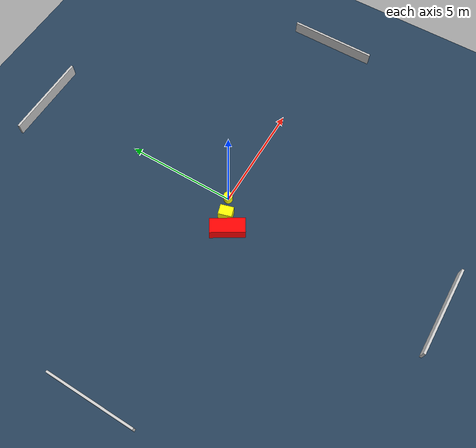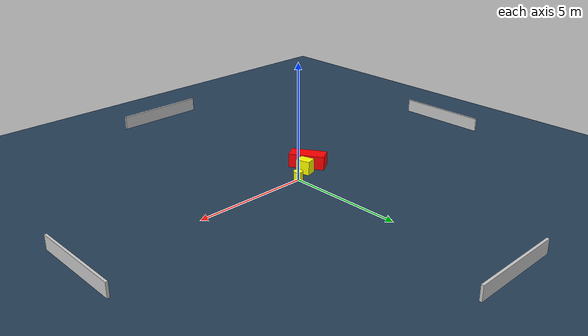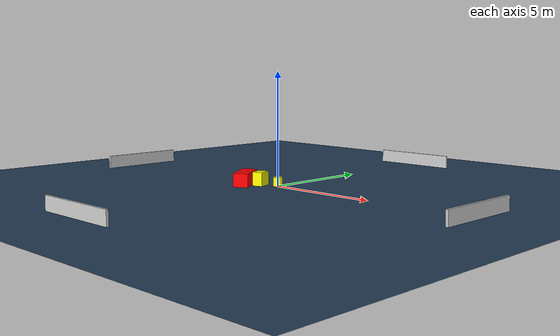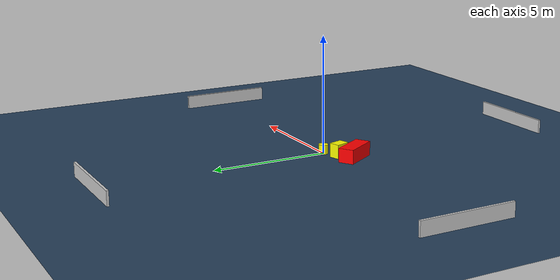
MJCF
<?xml version="1.0" ?>
<mujoco model="generated_environment">
  <option timestep="0.01" integrator="RK4" cone="elliptic"/>
  <default>
    <geom density="1"/>
  </default>
  <asset>
    <texture builtin="gradient" height="3072" name="skybox" rgb1="0.3 0.5 0.7" rgb2="0 0 0" type="skybox" width="512"/>
    <texture builtin="checker" height="300" name="groundplane" rgb1="0.2 0.3 0.4" rgb2="0.1 0.2 0.3" type="2d" width="300"/>
    <material name="groundplane" reflectance="0.2" texrepeat="5 5" texture="groundplane"/>
  </asset>
  <worldbody>
    <light dir="0 0 -1" directional="true" pos="0 0 1.5"/>
    <geom condim="3" friction="0.5 0.005 0.001" material="groundplane" name="floor" pos="0 0 0" size="0 0 0.05" type="plane"/>
    <body name="walls">
      <geom name="wall_1" condim="4" pos="-10.0 0.0 0.3" rgba="0.800000011920929 0.800000011920929 0.800000011920929 1.0" size="0.05 2.0 0.3" type="box"/>
      <geom name="wall_2" condim="4" pos="10.0 0.0 0.3" rgba="0.800000011920929 0.800000011920929 0.800000011920929 1.0" size="0.05 2.0 0.3" type="box"/>
      <geom name="wall_3" condim="4" pos="0.0 -10.0 0.3" rgba="0.800000011920929 0.800000011920929 0.800000011920929 1.0" size="2.0 0.05 0.3" type="box"/>
      <geom name="wall_4" condim="4" pos="0.0 10.0 0.3" rgba="0.800000011920929 0.800000011920929 0.800000011920929 1.0" size="2.0 0.05 0.3" type="box"/>
    </body>
    <body name="robot">
      <joint name="joint_x" type="slide" pos="0 0 0" axis="1 0 0"/>
      <joint name="joint_y" type="slide" pos="0 0 0" axis="0 1 0"/>
      <geom name="robot" type="cylinder" pos="0.0 0.0 0.2" size="0.2 0.2 0.0" mass="5.0" friction="1.0 0.005 0.0001" condim="4" rgba="1.0 1.0 0.0 1.0"/>
    </body>
    <body name="obstacle_1_movable">
      <geom name="obstacle_1_movable" condim="4" pos="-0.7389783425591034 -0.33686470044551053 0.3" euler="0 0 196.20023697622022" friction="0.0 0.005 0.001" rgba="1.0 1.0 0.0 1.0" size="0.23054319116107544 0.30112311819723014 0.3" type="box" mass="0.1"/>
      <joint type="free"/>
    </body>
    <body name="obstacle_2_static">
      <geom name="obstacle_2_static" condim="4" pos="-1.2927570850806922 -0.7401369667330084 0.3" euler="0 0 122.03141120313875" friction="0.0 0.005 0.001" rgba="1.0 0.0 0.0 1.0" size="0.7740163409896244 0.32881226553533044 0.3" type="box"/>
    </body>
  </worldbody>
  <actuator>
    <motor name="actuator_x" joint="joint_x" gear="1" ctrlrange="-1 1"/>
    <motor name="actuator_y" joint="joint_y" gear="1" ctrlrange="-1 1"/>
  </actuator>
</mujoco>
